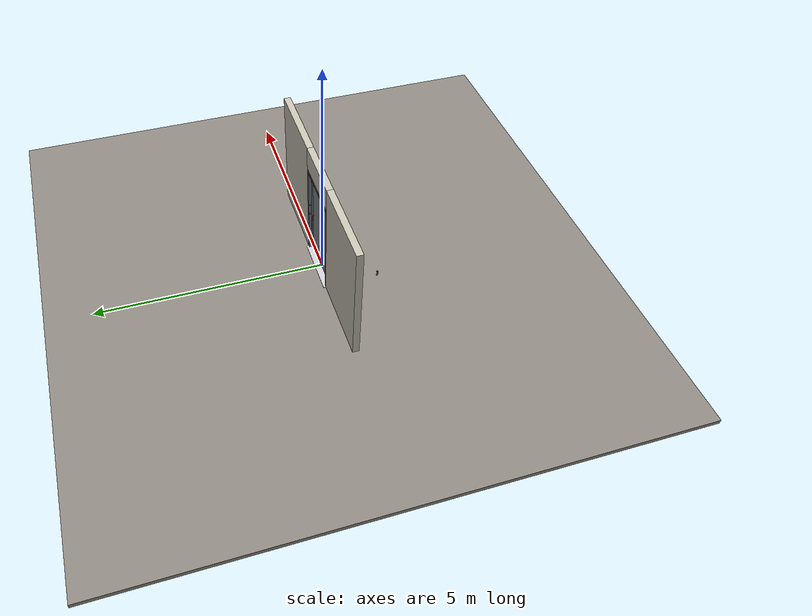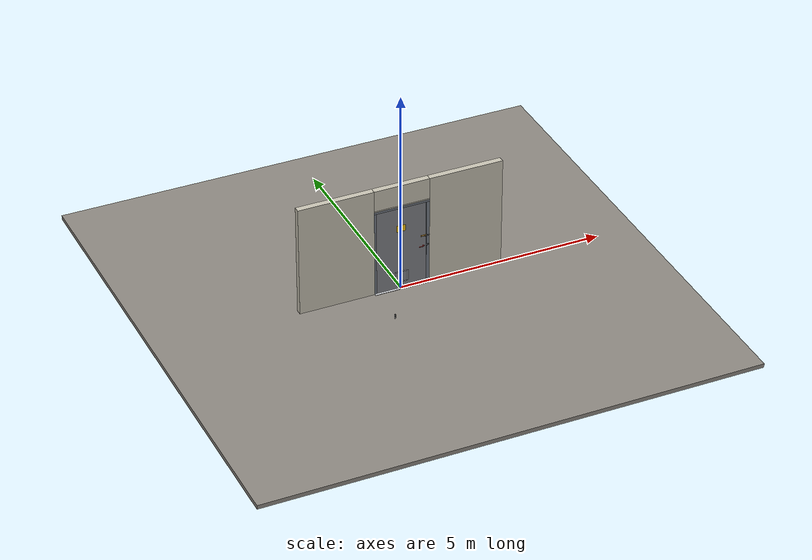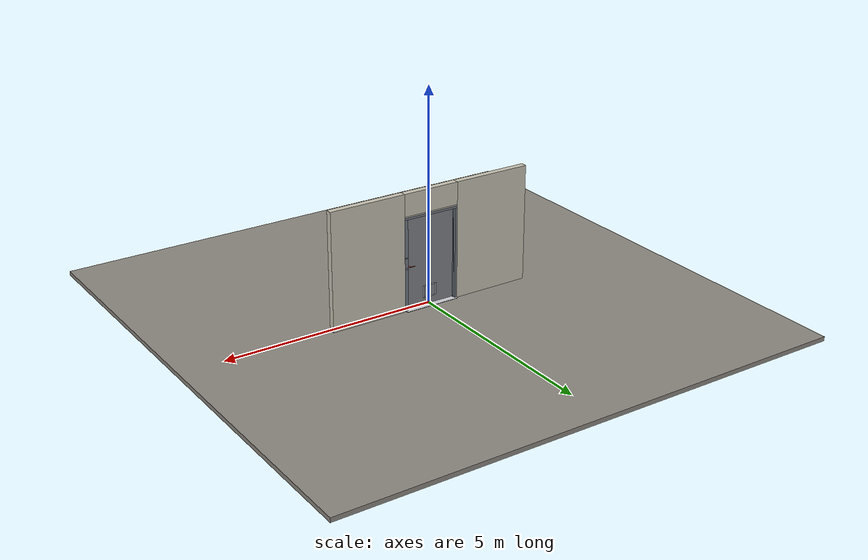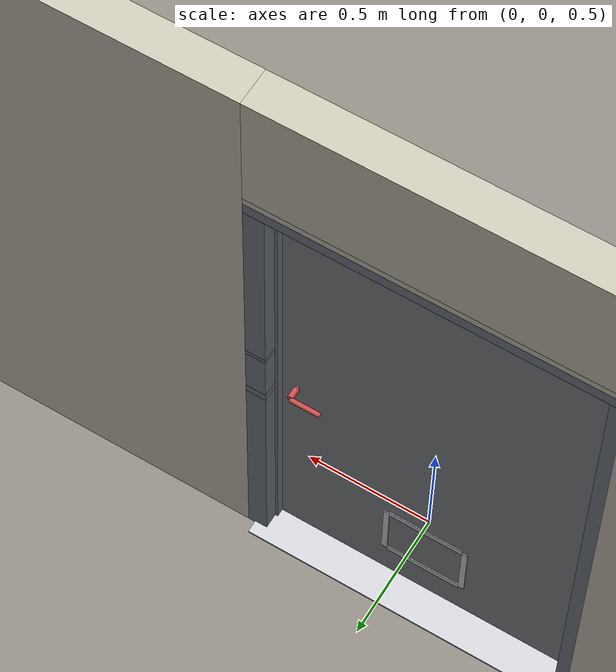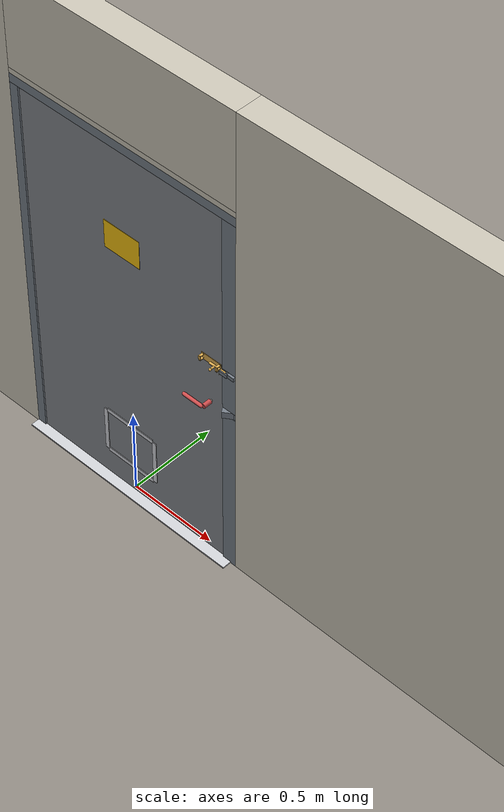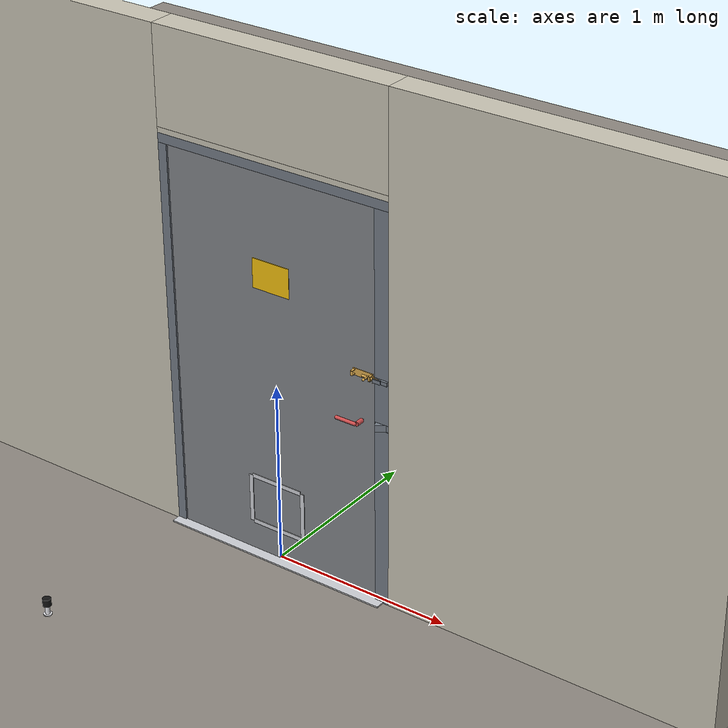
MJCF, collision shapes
<?xml version="1.0" ?>
<mujoco model="db0814_swing_single_full">
  <compiler angle="radian" meshdir="../../hardware" texturedir="../../textures" autolimits="true" inertiafromgeom="false"/>
  <option timestep="0.002" integrator="implicitfast" cone="elliptic" impratio="10" noslip_iterations="3">
    <flag multiccd="enable"/>
  </option>
  <size memory="16M"/>
  <default>
    <geom condim="4" solref="0.005 1" solimp="0.95 0.99 0.001"/>
    <joint solreflimit="0.005 1" solimplimit="0.95 0.99 0.001"/>
    <tendon solreflimit="0.005 1"/>
    <equality solref="0.002 1"/>
  </default>
  <visual>
    <headlight ambient="0.4 0.4 0.4" diffuse="0.7 0.7 0.7" specular="0.2 0.2 0.2"/>
    <quality shadowsize="4096"/>
    <map znear="0.01" zfar="60"/>
  </visual>
  <asset>
    <mesh name="hinge_e22b26c0c1" file="hinge_e22b26c0c1.obj"/>
    <mesh name="hinge_jamb_e1d088f8dc" file="hinge_jamb_e1d088f8dc.obj"/>
    <mesh name="lever_9f02b544cf" file="lever_9f02b544cf.obj"/>
    <material name="mat_floor" rgba="0.55 0.53 0.5 1" specular="0.2" shininess="0.15" reflectance="0"/>
    <material name="mat_wall" rgba="0.78 0.76 0.7 1" specular="0.2" shininess="0.1" reflectance="0"/>
    <material name="mat_leaf" rgba="0.5 0.51 0.53 1" specular="0.23" shininess="0.51" reflectance="0.02"/>
    <material name="mat_hinge" rgba="0.45 0.3 0.22 1" specular="0.5" shininess="0.1" reflectance="0.2"/>
    <material name="mat_op_nickel_satin" rgba="0.72 0.7 0.66 1" specular="0.8" shininess="0.65" reflectance="0.4"/>
    <material name="mat_trim" rgba="0.85 0.66 0.3 1" specular="0.8" shininess="0.75" reflectance="0.4"/>
    <material name="mat_bolt" rgba="0.85 0.66 0.3 1" specular="0.8" shininess="0.75" reflectance="0.4"/>
    <material name="mat_op_brass" rgba="0.85 0.66 0.3 1" specular="0.8" shininess="0.75" reflectance="0.4"/>
    <material name="mat_frame" rgba="0.45 0.48 0.52 1" specular="0.32" shininess="0.6" reflectance="0.08"/>
    <material name="mat_threshold" rgba="0.8 0.81 0.83 1" specular="0.8" shininess="0.6" reflectance="0.4"/>
    <material name="mat_vent" rgba="0.8 0.81 0.83 1" specular="0.8" shininess="0.6" reflectance="0.4"/>
    <material name="mat_placard" rgba="0.95 0.75 0.05 1" specular="0.2" shininess="0.5" reflectance="0"/>
    <material name="mat_bumper_stop" rgba="0.08 0.08 0.08 1" specular="0.2" shininess="0.1" reflectance="0"/>
    <material name="mat_stop_base" rgba="0.9 0.9 0.92 1" specular="0.8" shininess="0.9" reflectance="0.4"/>
    <texture name="skybox" type="skybox" builtin="gradient" rgb1="0.6 0.7 0.85" rgb2="0.9 0.92 0.95" width="256" height="256"/>
  </asset>
  <worldbody>
    <light name="sun" pos="1.5 -2.5 4" dir="-0.3 0.5 -0.8" directional="true" diffuse="0.8 0.8 0.8" specular="0.3 0.3 0.3" castshadow="true"/>
    <light name="fill" pos="-1.5 2.5 3" dir="0.3 -0.5 -0.7" directional="true" diffuse="0.35 0.35 0.4" castshadow="false"/>
    <camera name="robot_view" pos="0 -2.594313 1.812087" xyaxes="1 0 0 0 0.26963 0.962964" fovy="52"/>
    <camera name="far_view" pos="0 2.681312 1.812087" xyaxes="-1 0 0 0 -0.26963 0.962964" fovy="52"/>
    <camera name="iso" pos="2.004737 -2.172262 2.234138" xyaxes="0.741536 0.670913 0 -0.242917 0.268487 0.932151" fovy="46"/>
    <camera name="detail_handle" pos="0.619 -0.877 1.296" xyaxes="0.97561 0.219512 0 -0.070934 0.315262 0.94635" fovy="38"/>
    <geom name="floor" type="box" size="6 6 0.05" pos="0 0 -0.05" material="mat_floor" group="0" contype="1" conaffinity="1" friction="0.8 0.005 0.0001" density="2400"/>
    <geom name="wall_left" type="box" size="0.9185 0.0725 1.3735" pos="-1.5815 0.0435 1.3735" material="mat_wall" group="0" contype="1" conaffinity="1" friction="0.6 0.005 0.0001" density="800"/>
    <geom name="wall_right" type="box" size="0.9035 0.0725 1.3735" pos="1.5965 0.0435 1.3735" material="mat_wall" group="0" contype="1" conaffinity="1" friction="0.6 0.005 0.0001" density="800"/>
    <geom name="wall_header" type="box" size="0.678 0.0725 0.26" pos="0.015 0.0435 2.487" material="mat_wall" group="0" contype="1" conaffinity="1" friction="0.6 0.005 0.0001" density="800"/>
    <geom name="hinge_0_jamb" type="mesh" mesh="hinge_jamb_e1d088f8dc" pos="-0.61 -0.029 0.259" material="mat_hinge" group="1" contype="0" conaffinity="0" density="7850"/>
    <geom name="hinge_1_jamb" type="mesh" mesh="hinge_jamb_e1d088f8dc" pos="-0.61 -0.029 1.076" material="mat_hinge" group="1" contype="0" conaffinity="0" density="7850"/>
    <geom name="hinge_2_jamb" type="mesh" mesh="hinge_jamb_e1d088f8dc" pos="-0.61 -0.029 1.963" material="mat_hinge" group="1" contype="0" conaffinity="0" density="7850"/>
    <geom name="leaf_aux_bolt_keeper_b" type="box" size="0.014 0.003 0.0005" pos="0.6125 -0.034 1.253" quat="-0.5 -0.5 0.5 0.5" material="mat_op_brass" group="1" contype="0" conaffinity="0" density="7800"/>
    <geom name="leaf_aux_bolt_keeper_l" type="box" size="0.003 0.01 0.0005" pos="0.6125 -0.023 1.266" quat="-0.5 -0.5 0.5 0.5" material="mat_op_brass" group="1" contype="0" conaffinity="0" density="7800"/>
    <geom name="leaf_aux_bolt_keeper_t" type="box" size="0.014 0.003 0.0005" pos="0.6125 -0.034 1.279" quat="-0.5 -0.5 0.5 0.5" material="mat_op_brass" group="1" contype="0" conaffinity="0" density="7800"/>
    <geom name="leaf_aux_bolt_keeper_r" type="box" size="0.003 0.01 0.0005" pos="0.6125 -0.045 1.266" quat="-0.5 -0.5 0.5 0.5" material="mat_op_brass" group="1" contype="0" conaffinity="0" density="7800"/>
    <geom name="jamb_hinge" type="box" size="0.025 0.0725 1.0735" pos="-0.638 0.0435 1.0735" material="mat_frame" group="0" contype="1" conaffinity="1" friction="0.6 0.005 0.0001" density="300"/>
    <geom name="strike_1016_wall_n" type="box" size="0.04 0.05325 0.0183" pos="0.653 0.06275 1.016" material="mat_frame" group="0" contype="1" conaffinity="1" friction="0.6 0.005 0.0001" density="300"/>
    <geom name="strike_1016_wall_p" type="box" size="0.04 0.008 0.0183" pos="0.653 -0.0175 1.016" material="mat_frame" group="0" contype="1" conaffinity="1" friction="0.6 0.005 0.0001" density="300"/>
    <geom name="strike_1016_ramp" type="box" size="0.04 0.018028 0.0183" pos="0.656282 -0.018312 1.016" quat="0.957092 0 0 0.289784" material="mat_frame" group="0" contype="1" conaffinity="1" friction="0.12 0.005 0.0001" density="300"/>
    <geom name="strike_1016_back" type="box" size="0.0285 0.0095 0.0183" pos="0.6645 0 1.016" material="mat_frame" group="0" contype="1" conaffinity="1" friction="0.6 0.005 0.0001" density="300"/>
    <geom name="strike_1266_wall_n" type="box" size="0.04 0.071 0.01" pos="0.653 0.045 1.266" material="mat_frame" group="0" contype="1" conaffinity="1" friction="0.6 0.005 0.0001" density="300"/>
    <geom name="strike_1266_wall_p" type="box" size="0.022 0.003 0.01" pos="0.635 -0.045 1.266" material="mat_frame" group="0" contype="1" conaffinity="1" friction="0.6 0.005 0.0001" density="300"/>
    <geom name="strike_1266_back" type="box" size="0.019 0.008 0.01" pos="0.674 -0.034 1.266" material="mat_frame" group="0" contype="1" conaffinity="1" friction="0.6 0.005 0.0001" density="300"/>
    <geom name="jamb_strike_0" type="box" size="0.04 0.0725 0.49885" pos="0.653 0.0435 0.49885" material="mat_frame" group="0" contype="1" conaffinity="1" friction="0.6 0.005 0.0001" density="300"/>
    <geom name="jamb_strike_1" type="box" size="0.04 0.0725 0.11085" pos="0.653 0.0435 1.14515" material="mat_frame" group="0" contype="1" conaffinity="1" friction="0.6 0.005 0.0001" density="300"/>
    <geom name="jamb_strike_2" type="box" size="0.04 0.0725 0.4355" pos="0.653 0.0435 1.7115" material="mat_frame" group="0" contype="1" conaffinity="1" friction="0.6 0.005 0.0001" density="300"/>
    <geom name="jamb_head" type="box" size="0.678 0.0725 0.025" pos="0.015 0.0435 2.172" material="mat_frame" group="0" contype="1" conaffinity="1" friction="0.6 0.005 0.0001" density="300"/>
    <geom name="head_stud" type="box" size="0.678 0.0725 0.015" pos="0.015 0.0435 2.212" material="mat_wall" group="0" contype="1" conaffinity="1" friction="0.6 0.005 0.0001" density="500"/>
    <geom name="stop_hinge" type="box" size="0.0055 0.016 1.0735" pos="-0.6075 0.0385 1.0735" material="mat_frame" group="0" contype="1" conaffinity="1" friction="0.6 0.005 0.0001" density="300"/>
    <geom name="stop_strike" type="box" size="0.0055 0.016 1.0735" pos="0.6075 0.0385 1.0735" material="mat_frame" group="0" contype="1" conaffinity="1" friction="0.6 0.005 0.0001" density="300"/>
    <geom name="stop_head" type="box" size="0.613 0.016 0.0055" pos="0 0.0385 2.1415" material="mat_frame" group="0" contype="1" conaffinity="1" friction="0.6 0.005 0.0001" density="300"/>
    <geom name="threshold" type="box" size="0.663 0.1225 0.004" pos="0 0.0435 0.004" material="mat_threshold" group="0" contype="1" conaffinity="1" friction="0.6 0.005 0.0001" density="2700"/>
    <geom name="door_stop_base" type="cylinder" size="0.022 0.003" pos="-0.626 -1.06515 0.003" material="mat_stop_base" group="0" contype="1" conaffinity="1" friction="0.6 0.005 0.0001" density="7850"/>
    <geom name="door_stop_post" type="cylinder" size="0.012 0.0245" pos="-0.626 -1.06515 0.0305" material="mat_stop_base" group="0" contype="1" conaffinity="1" friction="0.6 0.005 0.0001" density="7850"/>
    <geom name="door_stop_bumper" type="cylinder" size="0.022 0.02" pos="-0.626 -1.06515 0.075" material="mat_bumper_stop" group="0" contype="1" conaffinity="1" friction="0.6 0.005 0.0001" density="1100"/>
    <site name="approach_point" pos="0 -1.5 0" quat="1 0 0 0" size="0.05" rgba="0.2 0.9 0.2 0.5" group="4"/>
    <site name="goal_point" pos="0 1.5 0" quat="1 0 0 0" size="0.05" rgba="0.2 0.9 0.2 0.5" group="4"/>
    <site name="door_plane_center" pos="0 0 1.0735" quat="1 0 0 0" size="0.02" rgba="0.2 0.9 0.2 0.5" group="4"/>
    <body name="leaf" pos="-0.613 0 0">
      <inertial pos="0.606937 -0.000282 1.065097" mass="65.233475" quat="0.499778 0.500172 -0.499869 0.500181" diaginertia="8.16942443 24.99792921 33.145119391"/>
      <joint name="leaf_hinge" type="hinge" axis="0 0 -1" pos="0.003 -0.029 0" limited="true" range="0 1.570796" damping="0.900995" frictionloss="14.506089" armature="0.02"/>
      <geom name="leaf_slab" type="box" size="0.6095 0.022 1.067" pos="0.6125 0 1.076" material="mat_leaf" group="0" contype="1" conaffinity="1" friction="0.4 0.005 0.0001" density="1"/>
      <geom name="hinge_0" type="mesh" mesh="hinge_e22b26c0c1" pos="0.003 -0.029 0.259" material="mat_hinge" group="1" contype="0" conaffinity="0" density="7850"/>
      <geom name="hinge_1" type="mesh" mesh="hinge_e22b26c0c1" pos="0.003 -0.029 1.076" material="mat_hinge" group="1" contype="0" conaffinity="0" density="7850"/>
      <geom name="hinge_2" type="mesh" mesh="hinge_e22b26c0c1" pos="0.003 -0.029 1.963" material="mat_hinge" group="1" contype="0" conaffinity="0" density="7850"/>
      <geom name="leaf_latch_bolt_faceplate" type="box" size="0.0006 0.014 0.0283" pos="1.2214 0 1.016" material="mat_bolt" group="1" contype="0" conaffinity="0" density="8500"/>
      <geom name="leaf_aux_bolt_plate" type="box" size="0.0595 0.019 0.001" pos="1.1545 -0.023 1.266" quat="0.707107 0.707107 0 0" material="mat_op_brass" group="1" contype="0" conaffinity="0" density="7800"/>
      <geom name="leaf_aux_bolt_guide_0_leg_n" type="box" size="0.006 0.002 0.0125" pos="1.206 -0.0345 1.255" quat="0.707107 0.707107 0 0" material="mat_op_brass" group="1" contype="0" conaffinity="0" density="7800"/>
      <geom name="leaf_aux_bolt_guide_0_leg_p" type="box" size="0.006 0.002 0.0125" pos="1.206 -0.0345 1.277" quat="0.707107 0.707107 0 0" material="mat_op_brass" group="1" contype="0" conaffinity="0" density="7800"/>
      <geom name="leaf_aux_bolt_guide_0_bridge" type="box" size="0.006 0.013 0.002" pos="1.206 -0.045 1.266" quat="0.707107 0.707107 0 0" material="mat_op_brass" group="1" contype="0" conaffinity="0" density="7800"/>
      <geom name="leaf_aux_bolt_guide_1_leg_n" type="box" size="0.006 0.002 0.0125" pos="1.105 -0.0345 1.255" quat="0.707107 0.707107 0 0" material="mat_op_brass" group="1" contype="0" conaffinity="0" density="7800"/>
      <geom name="leaf_aux_bolt_guide_1_leg_p" type="box" size="0.006 0.002 0.0125" pos="1.105 -0.0345 1.277" quat="0.707107 0.707107 0 0" material="mat_op_brass" group="1" contype="0" conaffinity="0" density="7800"/>
      <geom name="leaf_aux_bolt_guide_1_bridge" type="box" size="0.006 0.013 0.002" pos="1.105 -0.045 1.266" quat="0.707107 0.707107 0 0" material="mat_op_brass" group="1" contype="0" conaffinity="0" density="7800"/>
      <geom name="louver_vent_stile_n_l" type="box" size="0.012 0.002 0.137" pos="0.4505 -0.024 0.314" material="mat_vent" group="2" contype="0" conaffinity="0" density="2700"/>
      <geom name="louver_vent_stile_n_r" type="box" size="0.012 0.002 0.137" pos="0.7745 -0.024 0.314" material="mat_vent" group="2" contype="0" conaffinity="0" density="2700"/>
      <geom name="louver_vent_rail_n_b" type="box" size="0.15 0.002 0.012" pos="0.6125 -0.024 0.177" material="mat_vent" group="2" contype="0" conaffinity="0" density="2700"/>
      <geom name="louver_vent_rail_n_t" type="box" size="0.15 0.002 0.012" pos="0.6125 -0.024 0.451" material="mat_vent" group="2" contype="0" conaffinity="0" density="2700"/>
      <geom name="louver_vent_stile_p_l" type="box" size="0.012 0.002 0.137" pos="0.4505 0.024 0.314" material="mat_vent" group="2" contype="0" conaffinity="0" density="2700"/>
      <geom name="louver_vent_stile_p_r" type="box" size="0.012 0.002 0.137" pos="0.7745 0.024 0.314" material="mat_vent" group="2" contype="0" conaffinity="0" density="2700"/>
      <geom name="louver_vent_rail_p_b" type="box" size="0.15 0.002 0.012" pos="0.6125 0.024 0.177" material="mat_vent" group="2" contype="0" conaffinity="0" density="2700"/>
      <geom name="louver_vent_rail_p_t" type="box" size="0.15 0.002 0.012" pos="0.6125 0.024 0.451" material="mat_vent" group="2" contype="0" conaffinity="0" density="2700"/>
      <geom name="louver_vent_slat_0" type="box" size="0.15 0.0015 0.015" pos="0.6125 0 0.209833" quat="0.965926 -0.258819 0 0" material="mat_vent" group="2" contype="0" conaffinity="0" density="2700"/>
      <geom name="louver_vent_slat_1" type="box" size="0.15 0.0015 0.015" pos="0.6125 0 0.2515" quat="0.965926 -0.258819 0 0" material="mat_vent" group="2" contype="0" conaffinity="0" density="2700"/>
      <geom name="louver_vent_slat_2" type="box" size="0.15 0.0015 0.015" pos="0.6125 0 0.293167" quat="0.965926 -0.258819 0 0" material="mat_vent" group="2" contype="0" conaffinity="0" density="2700"/>
      <geom name="louver_vent_slat_3" type="box" size="0.15 0.0015 0.015" pos="0.6125 0 0.334833" quat="0.965926 -0.258819 0 0" material="mat_vent" group="2" contype="0" conaffinity="0" density="2700"/>
      <geom name="louver_vent_slat_4" type="box" size="0.15 0.0015 0.015" pos="0.6125 0 0.3765" quat="0.965926 -0.258819 0 0" material="mat_vent" group="2" contype="0" conaffinity="0" density="2700"/>
      <geom name="louver_vent_slat_5" type="box" size="0.15 0.0015 0.015" pos="0.6125 0 0.418167" quat="0.965926 -0.258819 0 0" material="mat_vent" group="2" contype="0" conaffinity="0" density="2700"/>
      <geom name="warning_placard" type="box" size="0.11 0.001 0.08" pos="0.6125 -0.023 1.6095" material="mat_placard" group="2" contype="0" conaffinity="0" density="1000"/>
      <site name="leaf_edge_mid" pos="1.222 0 1.067" quat="1 0 0 0" size="0.02" rgba="0.2 0.9 0.2 0.5" group="4"/>
      <body name="leaf_handle" pos="1.152 0 1.016">
        <inertial pos="-0.028544 0 0" mass="0.978187" quat="0 0.707107 0.707107 0" diaginertia="0.001772047 0.003604455 0.005198299"/>
        <joint name="leaf_handle_hinge" type="hinge" axis="0 -1 0" limited="true" range="0 0.96" damping="0.245624" frictionloss="0.048" stiffness="1.2" springref="-0.458333" armature="0.01"/>
        <geom name="leaf_handle_spindle" type="cylinder" size="0.006 0.03" pos="0 0 0" quat="0.707107 -0.707107 0 0" material="mat_op_nickel_satin" group="1" contype="0" conaffinity="0" density="7850"/>
        <geom name="leaf_handle_lever_n" type="mesh" mesh="lever_9f02b544cf" pos="0 -0.022 0" quat="0.707107 0.707107 0 0" material="mat_op_nickel_satin" group="1" contype="0" conaffinity="0" density="3000"/>
        <geom name="leaf_handle_lever_col_n" type="capsule" size="0.0095 0.053" pos="-0.0625 -0.077 0" quat="0.707107 0 -0.707107 0" material="mat_op_nickel_satin" group="3" contype="1" conaffinity="1" rgba="0.8 0.3 0.3 0.25" friction="0.7 0.01 0.0001" density="3000"/>
        <geom name="leaf_handle_hub_col_n" type="cylinder" size="0.012 0.022" pos="0 -0.052 0" quat="0.707107 -0.707107 0 0" material="mat_op_nickel_satin" group="3" contype="1" conaffinity="1" rgba="0.8 0.3 0.3 0.25" friction="0.6 0.005 0.0001" density="3000"/>
        <geom name="leaf_handle_lever_p" type="mesh" mesh="lever_9f02b544cf" pos="0 0.022 0" quat="-0.707107 0.707107 0 0" material="mat_op_nickel_satin" group="1" contype="0" conaffinity="0" density="3000"/>
        <geom name="leaf_handle_lever_col_p" type="capsule" size="0.0095 0.053" pos="-0.0625 0.077 0" quat="0.707107 0 -0.707107 0" material="mat_op_nickel_satin" group="3" contype="1" conaffinity="1" rgba="0.8 0.3 0.3 0.25" friction="0.7 0.01 0.0001" density="3000"/>
        <geom name="leaf_handle_hub_col_p" type="cylinder" size="0.012 0.022" pos="0 0.052 0" quat="0.707107 -0.707107 0 0" material="mat_op_nickel_satin" group="3" contype="1" conaffinity="1" rgba="0.8 0.3 0.3 0.25" friction="0.6 0.005 0.0001" density="3000"/>
        <site name="leaf_handle_grip_n" pos="-0.1 -0.077 0" quat="1 0 0 0" size="0.012" rgba="0.2 0.9 0.2 0.5" group="4"/>
        <site name="leaf_handle_grip_p" pos="-0.1 0.077 0" quat="1 0 0 0" size="0.012" rgba="0.2 0.9 0.2 0.5" group="4"/>
      </body>
      <body name="leaf_latch_bolt" pos="1.222 0 1.016">
        <inertial pos="-0.0055 0 0" mass="0.074627" quat="0.92388 -0.382683 0 0" diaginertia="0.000002271 0.000013255 0.000013255"/>
        <joint name="leaf_latch_bolt_slide" type="slide" axis="-1 0 0" limited="true" range="0 0.019" damping="2" frictionloss="0.3" stiffness="600" springref="-0.01" armature="0.1"/>
        <geom name="leaf_latch_bolt_capsule" type="capsule" size="0.008 0.0165" pos="-0.0055 0 0" quat="0.707107 0 0.707107 0" material="mat_bolt" group="0" contype="1" conaffinity="1" friction="0.2 0.005 0.0001" density="8500"/>
      </body>
      <body name="leaf_aux_bolt" pos="1.222 -0.034 1.266">
        <inertial pos="-0.023563 -0.00492 0" mass="0.111784" quat="0.998595 0 0 0.05299" diaginertia="0.000012212 0.000071985 0.000082309"/>
        <joint name="leaf_aux_bolt_slide" type="slide" axis="-1 0 0" limited="true" range="0 0.045" damping="1" frictionloss="1" armature="0.1"/>
        <geom name="leaf_aux_bolt_rod" type="capsule" size="0.006 0.044" pos="-0.02 0 0" quat="0.707107 0 0.707107 0" material="mat_op_brass" group="0" contype="1" conaffinity="1" friction="0.6 0.005 0.0001" density="7850"/>
        <geom name="leaf_aux_bolt_knob" type="capsule" size="0.005 0.01" pos="-0.035 -0.015 0" quat="0.707107 0.707107 0 0" material="mat_op_brass" group="0" contype="1" conaffinity="1" friction="0.6 0.005 0.0001" density="7850"/>
        <geom name="leaf_aux_bolt_knob_end" type="sphere" size="0.00675" pos="-0.035 -0.03 0" material="mat_op_brass" group="1" contype="0" conaffinity="0" density="7850"/>
        <site name="leaf_aux_bolt_grip" pos="-0.035 -0.034 0" quat="1 0 0 0" size="0.012" rgba="0.2 0.9 0.2 0.5" group="4"/>
      </body>
    </body>
  </worldbody>
  <tendon>
    <fixed name="leaf_latch_bolt_coupling" limited="true" range="0 10">
      <joint joint="leaf_latch_bolt_slide" coef="1"/>
      <joint joint="leaf_handle_hinge" coef="-0.020879"/>
    </fixed>
  </tendon>
  <sensor>
    <jointpos name="leaf_hinge_pos" joint="leaf_hinge"/>
    <jointvel name="leaf_hinge_vel" joint="leaf_hinge"/>
    <jointpos name="leaf_handle_hinge_pos" joint="leaf_handle_hinge"/>
    <jointvel name="leaf_handle_hinge_vel" joint="leaf_handle_hinge"/>
    <jointpos name="leaf_latch_bolt_slide_pos" joint="leaf_latch_bolt_slide"/>
    <jointvel name="leaf_latch_bolt_slide_vel" joint="leaf_latch_bolt_slide"/>
    <jointpos name="leaf_aux_bolt_slide_pos" joint="leaf_aux_bolt_slide"/>
    <jointvel name="leaf_aux_bolt_slide_vel" joint="leaf_aux_bolt_slide"/>
  </sensor>
</mujoco>
